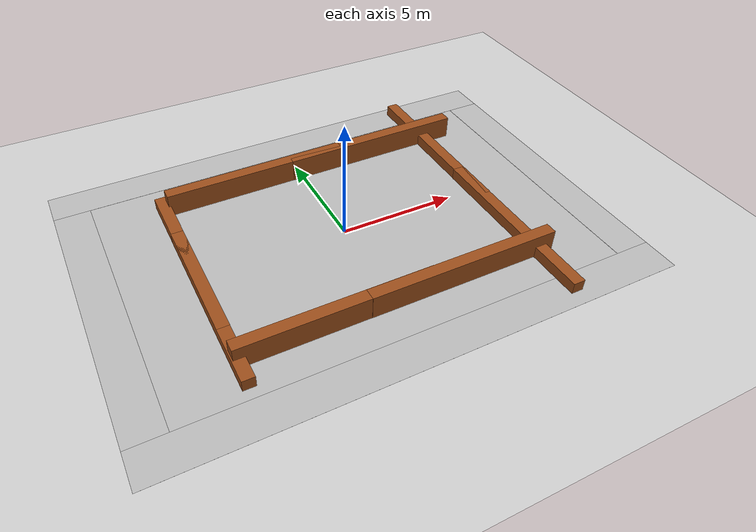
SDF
<sdf version="1.7">
 <world name="RoboCon25">
  <scene><ambient>0.4 0.4 0.4 1</ambient><background>0.7 0.7 0.7 1</background><shadows>0</shadows></scene>
  <spherical_coordinates>
   <surface_model>EARTH_WGS84</surface_model>
   <latitude_deg>0</latitude_deg>
   <longitude_deg>0</longitude_deg>
   <elevation>0</elevation>
   <heading_deg>0</heading_deg>
  </spherical_coordinates>
  <light name="sun" type="directional">
   <cast_shadows>0</cast_shadows>
   <pose>0 0 10 0 -0 0</pose>
   <diffuse>0.8 0.8 0.8 1</diffuse>
   <specular>0.2 0.2 0.2 1</specular>
   <attenuation>
    <range>1000</range>
    <constant>0.9</constant>
    <linear>0.01</linear>
    <quadratic>0.001</quadratic>
   </attenuation>
   <direction>-0.5 0.1 -0.9</direction>
   <spot><inner_angle>0</inner_angle><outer_angle>0</outer_angle><falloff>0</falloff></spot>
  </light>
  <physics type="ode">
   <max_step_size>0.015</max_step_size>
   <real_time_update_rate>67</real_time_update_rate>
   <real_time_factor>1</real_time_factor>
  </physics>
  <model name="ground_plane">
   <static>1</static>
   <link name="link">
    <collision name="collision">
     <geometry><plane><normal>0 0 1</normal><size>100 100</size></plane></geometry>
     <surface><friction><ode><mu>100</mu><mu2>50</mu2></ode></friction></surface>
    </collision>
    <visual name="visual">
     <cast_shadows>0</cast_shadows>
     <geometry><plane><normal>0 0 1</normal><size>100 100</size></plane></geometry>
     <material>
      <script><uri>file://media/materials/scripts/gazebo.material</uri><name>Gazebo/Grey</name></script>
     </material>
    </visual>
    <velocity_decay><linear>0</linear><angular>0</angular></velocity_decay>
   </link>
  </model>
  <model name="field">
   <static>1</static>
   <link name="chassis">
    <pose>0 0 0.01 0 -0 0</pose>
    <collision name="collision">
     <geometry><plane><normal>0 0 1</normal><size>18 12</size></plane></geometry>
     <surface><friction><ode><mu>100</mu><mu2>50</mu2></ode></friction></surface>
    </collision>
    <visual name="carpet">
     <cast_shadows>0</cast_shadows>
     <geometry><plane><normal>0 0 1</normal><size>18 12</size></plane></geometry>
     <material>
      <script>
       <uri>file://materials/scripts/</uri>
       <uri>file://materials/textures/</uri>
       <name>RoboCon/Carpet</name>
      </script>
     </material>
    </visual>
    <visual name="base1">
     <pose>0 6.75 0.01 0 -0 0</pose>
     <cast_shadows>0</cast_shadows>
     <geometry><plane><normal>0 0 1</normal><size>21 1.5</size></plane></geometry>
     <material>
      <script>
       <uri>file://materials/scripts/</uri>
       <uri>file://materials/textures/</uri>
       <name>RoboCon/FieldBorder</name>
      </script>
     </material>
    </visual>
    <visual name="base2">
     <pose>0 -6.75 0.01 0 -0 0</pose>
     <cast_shadows>0</cast_shadows>
     <geometry><plane><normal>0 0 1</normal><size>21 1.5</size></plane></geometry>
     <material>
      <script>
       <uri>file://materials/scripts/</uri>
       <uri>file://materials/textures/</uri>
       <name>RoboCon/FieldBorder</name>
      </script>
     </material>
    </visual>
    <visual name="base3">
     <pose>9.75 0 0.01 0 -0 0</pose>
     <cast_shadows>0</cast_shadows>
     <geometry><plane><normal>0 0 1</normal><size>1.5 12</size></plane></geometry>
     <material>
      <script>
       <uri>file://materials/scripts/</uri>
       <uri>file://materials/textures/</uri>
       <name>RoboCon/FieldBorder</name>
      </script>
     </material>
    </visual>
    <visual name="base4">
     <pose>-9.75 0 0.01 0 -0 0</pose>
     <cast_shadows>0</cast_shadows>
     <geometry><plane><normal>0 0 1</normal><size>1.5 12</size></plane></geometry>
     <material>
      <script>
       <uri>file://materials/scripts/</uri>
       <uri>file://materials/textures/</uri>
       <name>RoboCon/FieldBorder</name>
      </script>
     </material>
    </visual>
   </link>
  </model>
  <gravity>0 0 -9.8</gravity>
  <magnetic_field>6e-06 2.3e-05 -4.2e-05</magnetic_field>
  <atmosphere type="adiabatic"/>
  <model name="fence_long">
   <static>1</static>
   <link name="fence_long_2">
    <visual name="visual_long_2">
     <geometry><box><size>0.5 8 1</size></box></geometry>
     <material><ambient>0.6 0.3 0.1 1</ambient></material>
    </visual>
    <collision name="collision_long_2"><geometry><box><size>0.5 8 1</size></box></geometry></collision>
    <pose>-7.25 0 0.5 0 -0 1.5708</pose>
   </link>
   <pose>5.19759 4.38127 0 0 -0 0</pose>
  </model>
  <model name="fence_long_0">
   <static>1</static>
   <link name="fence_long_2">
    <visual name="visual_long_2">
     <geometry><box><size>0.5 8 1</size></box></geometry>
     <material><ambient>0.6 0.3 0.1 1</ambient></material>
    </visual>
    <collision name="collision_long_2"><geometry><box><size>0.5 8 1</size></box></geometry></collision>
    <pose>-7.25 0 0.5 0 -0 1.5708</pose>
   </link>
   <pose>10.8064 4.37519 0 0 -0 0</pose>
  </model>
  <model name="fence_short">
   <static>1</static>
   <link name="fence_short_2">
    <visual name="visual_short_2">
     <geometry><box><size>0.5 8 1</size></box></geometry>
     <material><ambient>0.6 0.3 0.1 1</ambient></material>
    </visual>
    <collision name="collision_short_2"><geometry><box><size>0.5 8 1</size></box></geometry></collision>
   </link>
   <pose>-6.21981 0.878613 0 0 -0 0</pose>
  </model>
  <model name="fence_short_0">
   <static>1</static>
   <link name="fence_short_2">
    <visual name="visual_short_2">
     <geometry><box><size>0.5 8 1</size></box></geometry>
     <material><ambient>0.6 0.3 0.1 1</ambient></material>
    </visual>
    <collision name="collision_short_2"><geometry><box><size>0.5 8 1</size></box></geometry></collision>
   </link>
   <pose>-6.22436 -1.57513 0 0 -0 0</pose>
  </model>
  <model name="fence_long_1">
   <static>1</static>
   <link name="fence_long_2">
    <visual name="visual_long_2">
     <geometry><box><size>0.5 8 1</size></box></geometry>
     <material><ambient>0.6 0.3 0.1 1</ambient></material>
    </visual>
    <collision name="collision_long_2"><geometry><box><size>0.5 8 1</size></box></geometry></collision>
    <pose>-7.25 0 0.5 0 -0 1.5708</pose>
   </link>
   <pose>4.82958 -4.4098 0 0 -0 0</pose>
  </model>
  <model name="fence_long_2">
   <static>1</static>
   <link name="fence_long_2">
    <visual name="visual_long_2">
     <geometry><box><size>0.5 8 1</size></box></geometry>
     <material><ambient>0.6 0.3 0.1 1</ambient></material>
    </visual>
    <collision name="collision_long_2"><geometry><box><size>0.5 8 1</size></box></geometry></collision>
    <pose>-7.25 0 0.5 0 -0 1.5708</pose>
   </link>
   <pose>10.0275 -4.41936 0 0 -0 0</pose>
  </model>
  <model name="fence_short_1">
   <static>1</static>
   <link name="fence_short_2">
    <visual name="visual_short_2">
     <geometry><box><size>0.5 8 1</size></box></geometry>
     <material><ambient>0.6 0.3 0.1 1</ambient></material>
    </visual>
    <collision name="collision_short_2"><geometry><box><size>0.5 8 1</size></box></geometry></collision>
   </link>
   <pose>6.20154 3.07304 0 0 -0 0</pose>
  </model>
  <model name="fence_short_2">
   <static>1</static>
   <link name="fence_short_2">
    <visual name="visual_short_2">
     <geometry><box><size>0.5 8 1</size></box></geometry>
     <material><ambient>0.6 0.3 0.1 1</ambient></material>
    </visual>
    <collision name="collision_short_2"><geometry><box><size>0.5 8 1</size></box></geometry></collision>
   </link>
   <pose>6.18849 -2.91055 0 0 -0 0</pose>
  </model>
 </world>
</sdf>
